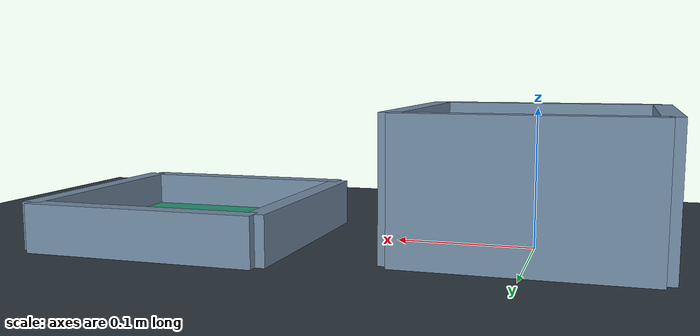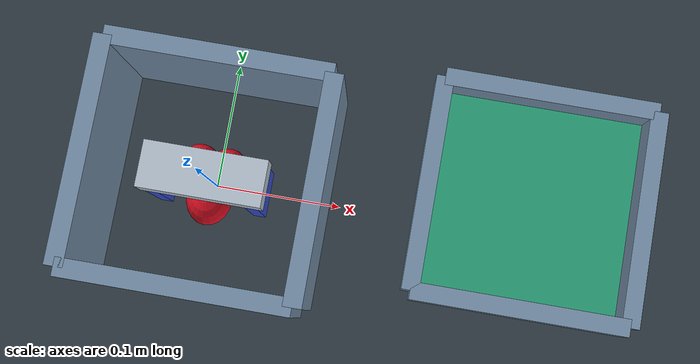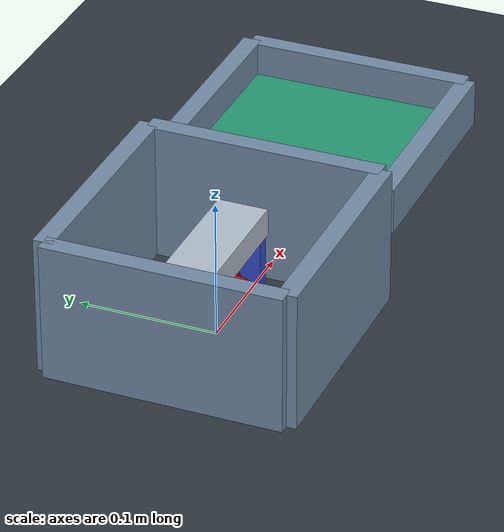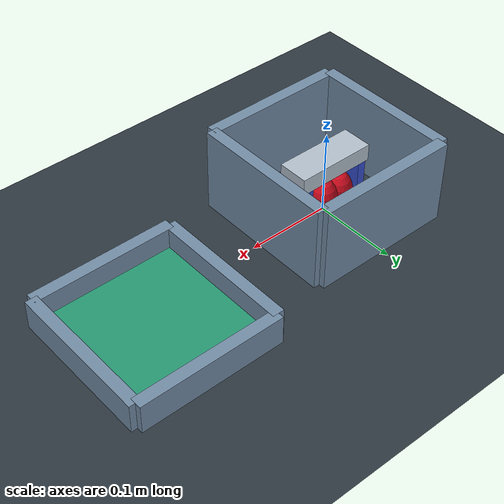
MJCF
<mujoco model="extraction"><compiler angle="radian"/><option timestep=".002" integrator="implicitfast"/>
    <default><geom friction="1 .01 .001" solref=".008 1"/><joint damping="10"/></default>
    <visual><global offwidth="800" offheight="600"/></visual>
    <worldbody><light pos="0 -1 2"/><camera name="overview" pos=".75 -.95 .8" xyaxes=".8 .6 0 -.3 .4 .866"/>
    <geom name="floor" type="plane" size="1 1 .05" rgba=".18 .22 .25 1"/>
    <geom name="tray_floor" type="box" pos="0.25115693448699705 0.02819432152802452 .005" size=".085 .085 .005" rgba=".15 .6 .45 1"/><geom name="cavity_wall0" type="box" pos="0.085 0 0.05" size="0.007 0.085 0.05" rgba=".45 .55 .65 1"/><geom name="cavity_wall1" type="box" pos="-0.085 0 0.05" size="0.007 0.085 0.05" rgba=".45 .55 .65 1"/><geom name="cavity_wall2" type="box" pos="0 0.085 0.05" size="0.085 0.007 0.05" rgba=".45 .55 .65 1"/><geom name="cavity_wall3" type="box" pos="0 -0.085 0.05" size="0.085 0.007 0.05" rgba=".45 .55 .65 1"/><geom name="tray_wall0" type="box" pos="0.33615693448699707 0.02819432152802452 0.0175" size="0.007 0.085 0.0175" rgba=".45 .55 .65 1"/><geom name="tray_wall1" type="box" pos="0.16615693448699703 0.02819432152802452 0.0175" size="0.007 0.085 0.0175" rgba=".45 .55 .65 1"/><geom name="tray_wall2" type="box" pos="0.25115693448699705 0.11319432152802453 0.0175" size="0.085 0.007 0.0175" rgba=".45 .55 .65 1"/><geom name="tray_wall3" type="box" pos="0.25115693448699705 -0.056805678471975485 0.0175" size="0.085 0.007 0.0175" rgba=".45 .55 .65 1"/>
    <body name="ee" pos="0 0 0" gravcomp="1">
    <joint name="x" type="slide" axis="1 0 0"/><joint name="y" type="slide" axis="0 1 0"/><joint name="z" type="slide" axis="0 0 1"/>
    <geom name="palm" type="box" pos="0 0 .065" size=".047 .018 .01" mass=".4" rgba=".7 .75 .8 1"/>
    <body name="left" pos="-.038 0 .015"><joint name="left_finger" type="slide" axis="1 0 0" range="0 .013" limited="true"/><geom name="finger_l" type="box" size=".005 .018 .04" mass=".05" rgba=".2 .3 .8 1"/></body>
    <body name="right" pos=".038 0 .015"><joint name="right_finger" type="slide" axis="-1 0 0" range="0 .013" limited="true"/><geom name="finger_r" type="box" size=".005 .018 .04" mass=".05" rgba=".2 .3 .8 1"/></body></body>
    <body name="heart" pos="0 0 .026"><freejoint name="object"/>
    <geom name="object_collision" type="box" size=".023 .025 .025" mass=".07" rgba=".8 .08 .15 0"/>
    <geom type="ellipsoid" pos="-.011 .007 .003" size=".017 .021 .024" contype="0" conaffinity="0" mass="0" rgba=".85 .05 .13 1"/>
    <geom type="ellipsoid" pos=".011 .007 .003" size=".017 .021 .024" contype="0" conaffinity="0" mass="0" rgba=".85 .05 .13 1"/>
    <geom type="ellipsoid" pos="0 -.012 0" size=".018 .022 .02" contype="0" conaffinity="0" mass="0" rgba=".85 .05 .13 1"/>
    </body></worldbody>
    <equality><weld name="grasp" body1="ee" body2="heart" active="false" solref=".004 1"/></equality>
    <actuator><position joint="x" kp="1800" kv="85"/><position joint="y" kp="1800" kv="85"/><position joint="z" kp="1800" kv="85"/>
    <position joint="left_finger" kp="120"/><position joint="right_finger" kp="120"/></actuator></mujoco>
